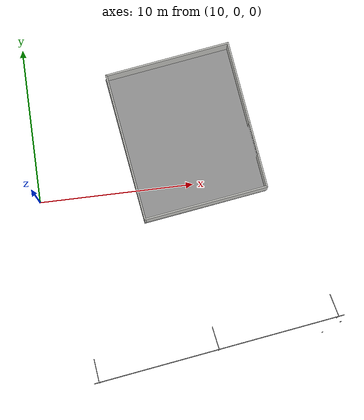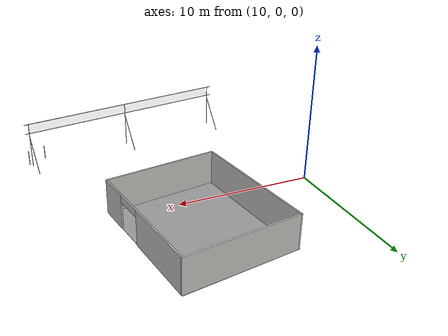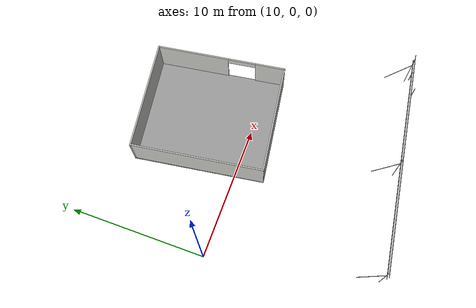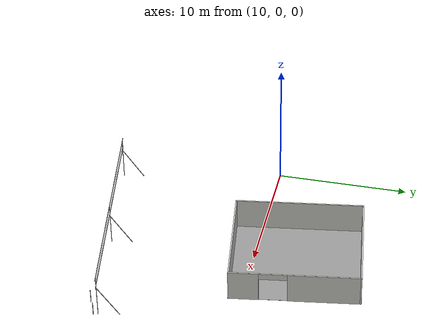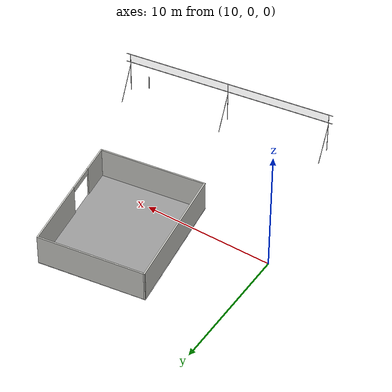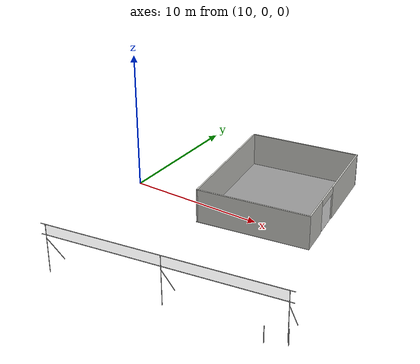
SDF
<sdf version="1.7">
 <world name="default">
  <model name="frontage">
   <link name="link_1">
    <pose>6.68 -7.94 1.7 0 -0 0</pose>
    <collision name="collision">
     <geometry><cylinder><length>3.5</length><radius>0.02</radius></cylinder></geometry>
    </collision>
    <visual name="visual">
     <geometry><cylinder><length>3.5</length><radius>0.02</radius></cylinder></geometry>
     <material>
      <script><uri>file://media/materials/scripts/gazebo.material</uri><name>Gazebo/Chrome</name></script>
      <emissive>0.1 0.1 0.1 1</emissive>
      <shader type="vertex"><normal_map>__default__</normal_map></shader>
      <specular>0.01 0.01 0.01 1</specular>
      <ambient>0.5 0.5 0.5 1</ambient>
      <diffuse>0.05 0.05 0.05 1</diffuse>
     </material>
    </visual>
   </link>
   <link name="link_2">
    <pose>6.68 0 1.7 0 -0 0</pose>
    <collision name="collision">
     <geometry><cylinder><length>3.5</length><radius>0.02</radius></cylinder></geometry>
    </collision>
    <visual name="visual">
     <geometry><cylinder><length>3.5</length><radius>0.02</radius></cylinder></geometry>
     <material>
      <script><uri>file://media/materials/scripts/gazebo.material</uri><name>Gazebo/Chrome</name></script>
      <emissive>0.1 0.1 0.1 1</emissive>
      <shader type="vertex"><normal_map>__default__</normal_map></shader>
      <specular>0.01 0.01 0.01 1</specular>
      <ambient>0.5 0.5 0.5 1</ambient>
      <diffuse>0.05 0.05 0.05 1</diffuse>
     </material>
    </visual>
   </link>
   <link name="link_3">
    <pose>6.68 7.93 1.7 0 -0 0</pose>
    <collision name="collision">
     <geometry><cylinder><length>3.5</length><radius>0.02</radius></cylinder></geometry>
    </collision>
    <visual name="visual">
     <geometry><cylinder><length>3.5</length><radius>0.02</radius></cylinder></geometry>
     <material>
      <script><uri>file://media/materials/scripts/gazebo.material</uri><name>Gazebo/Chrome</name></script>
      <emissive>0.1 0.1 0.1 1</emissive>
      <shader type="vertex"><normal_map>__default__</normal_map></shader>
      <specular>0.01 0.01 0.01 1</specular>
      <ambient>0.5 0.5 0.5 1</ambient>
      <diffuse>0.05 0.05 0.05 1</diffuse>
     </material>
    </visual>
   </link>
   <link name="link_4">
    <pose>6.68 0 2.7 1.5707 -0 0</pose>
    <collision name="collision">
     <geometry><cylinder><length>16.5</length><radius>0.02</radius></cylinder></geometry>
    </collision>
    <visual name="visual">
     <geometry><cylinder><length>16.5</length><radius>0.02</radius></cylinder></geometry>
     <material>
      <script><uri>file://media/materials/scripts/gazebo.material</uri><name>Gazebo/Chrome</name></script>
      <emissive>0.1 0.1 0.1 1</emissive>
      <shader type="vertex"><normal_map>__default__</normal_map></shader>
      <specular>0.01 0.01 0.01 1</specular>
      <ambient>0.5 0.5 0.5 1</ambient>
      <diffuse>0.05 0.05 0.05 1</diffuse>
     </material>
    </visual>
   </link>
   <link name="link_5">
    <pose>6.68 0 3.45 1.5707 -0 0</pose>
    <collision name="collision">
     <geometry><cylinder><length>16.5</length><radius>0.02</radius></cylinder></geometry>
    </collision>
    <visual name="visual">
     <geometry><cylinder><length>16.5</length><radius>0.02</radius></cylinder></geometry>
     <material>
      <script><uri>file://media/materials/scripts/gazebo.material</uri><name>Gazebo/Chrome</name></script>
      <emissive>0.1 0.1 0.1 1</emissive>
      <shader type="vertex"><normal_map>__default__</normal_map></shader>
      <specular>0.01 0.01 0.01 1</specular>
      <ambient>0.5 0.5 0.5 1</ambient>
      <diffuse>0.05 0.05 0.05 1</diffuse>
     </material>
    </visual>
   </link>
   <link name="link_6">
    <pose>5.89 -7.94 1.225 0 0.565 0</pose>
    <collision name="collision">
     <geometry><cylinder><length>2.93</length><radius>0.02</radius></cylinder></geometry>
    </collision>
    <visual name="visual">
     <geometry><cylinder><length>2.93</length><radius>0.02</radius></cylinder></geometry>
     <material>
      <script><uri>file://media/materials/scripts/gazebo.material</uri><name>Gazebo/Chrome</name></script>
      <emissive>0.1 0.1 0.1 1</emissive>
      <shader type="vertex"><normal_map>__default__</normal_map></shader>
      <specular>0.01 0.01 0.01 1</specular>
      <ambient>0.5 0.5 0.5 1</ambient>
      <diffuse>0.05 0.05 0.05 1</diffuse>
     </material>
    </visual>
   </link>
   <link name="link_7">
    <pose>5.89 0 1.225 0 0.565 0</pose>
    <collision name="collision">
     <geometry><cylinder><length>2.93</length><radius>0.02</radius></cylinder></geometry>
    </collision>
    <visual name="visual">
     <geometry><cylinder><length>2.93</length><radius>0.02</radius></cylinder></geometry>
     <material>
      <script><uri>file://media/materials/scripts/gazebo.material</uri><name>Gazebo/Chrome</name></script>
      <emissive>0.1 0.1 0.1 1</emissive>
      <shader type="vertex"><normal_map>__default__</normal_map></shader>
      <specular>0.01 0.01 0.01 1</specular>
      <ambient>0.5 0.5 0.5 1</ambient>
      <diffuse>0.05 0.05 0.05 1</diffuse>
     </material>
    </visual>
   </link>
   <link name="link_8">
    <pose>5.89 7.93 1.225 0 0.565 0</pose>
    <collision name="collision">
     <geometry><cylinder><length>2.93</length><radius>0.02</radius></cylinder></geometry>
    </collision>
    <visual name="visual">
     <geometry><cylinder><length>2.93</length><radius>0.02</radius></cylinder></geometry>
     <material>
      <script><uri>file://media/materials/scripts/gazebo.material</uri><name>Gazebo/Chrome</name></script>
      <emissive>0.1 0.1 0.1 1</emissive>
      <shader type="vertex"><normal_map>__default__</normal_map></shader>
      <specular>0.01 0.01 0.01 1</specular>
      <ambient>0.5 0.5 0.5 1</ambient>
      <diffuse>0.05 0.05 0.05 1</diffuse>
     </material>
    </visual>
   </link>
   <link name="link_9">
    <pose>6.68 0 3.075 0 -0 0</pose>
    <collision name="collision"><geometry><box><size>0.002 15.87 0.75</size></box></geometry></collision>
    <visual name="visual">
     <geometry><box><size>0.002 15.87 0.75</size></box></geometry>
     <material>
      <emissive>1 1 1 1</emissive>
      <shader type="vertex"><normal_map>__default__</normal_map></shader>
      <specular>1 1 1 1</specular>
      <lighting>1</lighting>
      <ambient>1 1 1 1</ambient>
      <diffuse>1 1 1 1</diffuse>
     </material>
     <transparency>0.65</transparency>
    </visual>
   </link>
   <static>1</static>
   <pose>19.378 -4.29745 -0 0 0 -1.42072</pose>
  </model>
  <model name="food_handling_unit">
   <link name="Wall_5">
    <pose>-0 4.05 0 0 -0 0</pose>
    <collision name="Wall_5_Collision">
     <geometry><box><size>9.70037 0.1 2.5</size></box></geometry>
     <pose>0 0 1.25 0 -0 0</pose>
    </collision>
    <visual name="Wall_5_Visual">
     <geometry><box><size>9.70037 0.1 2.5</size></box></geometry>
     <material>
      <ambient>1 1 1 1</ambient>
      <script><uri>file://media/materials/scripts/gazebo.material</uri><name>Gazebo/CeilingTiled</name></script>
     </material>
     <pose>0 0 1.25 0 -0 0</pose>
     <meta><layer>0</layer></meta>
    </visual>
   </link>
   <link name="Wall_6">
    <pose>4.8 -0 0 0 -0 -1.5708</pose>
    <collision name="Wall_6_Collision">
     <geometry><box><size>8.20047 0.1 2.5</size></box></geometry>
     <pose>0 0 1.25 0 -0 0</pose>
    </collision>
    <visual name="Wall_6_Visual">
     <geometry><box><size>8.20047 0.1 2.5</size></box></geometry>
     <material>
      <ambient>1 1 1 1</ambient>
      <script><uri>file://media/materials/scripts/gazebo.material</uri><name>Gazebo/CeilingTiled</name></script>
     </material>
     <pose>0 0 1.25 0 -0 0</pose>
     <meta><layer>0</layer></meta>
    </visual>
   </link>
   <link name="Wall_7">
    <pose>-0 -4.05 0 0 -0 3.14159</pose>
    <collision name="Wall_7_Collision_0">
     <geometry><box><size>5.3757 0.1 2.5</size></box></geometry>
     <pose>-2.16197 0 1.25 0 -0 0</pose>
    </collision>
    <collision name="Wall_7_Collision_1">
     <geometry><box><size>2.23943 0.1 2.5</size></box></geometry>
     <pose>3.7301 0 1.25 0 -0 0</pose>
    </collision>
    <collision name="Wall_7_Collision_2">
     <geometry><box><size>2.0845 0.1 0.5</size></box></geometry>
     <pose>1.56813 0 2.25 0 -0 0</pose>
    </collision>
    <visual name="Wall_7_Visual_0">
     <geometry><box><size>5.3757 0.1 2.5</size></box></geometry>
     <material>
      <ambient>1 1 1 1</ambient>
      <script><uri>file://media/materials/scripts/gazebo.material</uri><name>Gazebo/CeilingTiled</name></script>
     </material>
     <pose>-2.16197 0 1.25 0 -0 0</pose>
     <meta><layer>0</layer></meta>
    </visual>
    <visual name="Wall_7_Visual_1">
     <geometry><box><size>2.23943 0.1 2.5</size></box></geometry>
     <material>
      <ambient>1 1 1 1</ambient>
      <script><uri>file://media/materials/scripts/gazebo.material</uri><name>Gazebo/CeilingTiled</name></script>
     </material>
     <pose>3.7301 0 1.25 0 -0 0</pose>
     <meta><layer>0</layer></meta>
    </visual>
    <visual name="Wall_7_Visual_2">
     <geometry><box><size>2.0845 0.1 0.5</size></box></geometry>
     <material>
      <ambient>1 1 1 1</ambient>
      <script><uri>file://media/materials/scripts/gazebo.material</uri><name>Gazebo/CeilingTiled</name></script>
     </material>
     <pose>1.56813 0 2.25 0 -0 0</pose>
     <meta><layer>0</layer></meta>
    </visual>
   </link>
   <link name="Wall_8">
    <pose>-4.8 -0 0 0 -0 1.5708</pose>
    <collision name="Wall_8_Collision">
     <geometry><box><size>8.19953 0.1 2.5</size></box></geometry>
     <pose>0 0 1.25 0 -0 0</pose>
    </collision>
    <visual name="Wall_8_Visual">
     <geometry><box><size>8.19953 0.1 2.5</size></box></geometry>
     <material>
      <ambient>1 1 1 1</ambient>
      <script><uri>file://media/materials/scripts/gazebo.material</uri><name>Gazebo/CeilingTiled</name></script>
     </material>
     <pose>0 0 1.25 0 -0 0</pose>
     <meta><layer>0</layer></meta>
    </visual>
   </link>
   <static>1</static>
   <pose>19.9734 3.27172 0 0 -0 1.71553</pose>
  </model>
  <model name="fhu_floor">
   <link name="link_0">
    <collision name="collision"><geometry><box><size>9.75 8.2 0.001</size></box></geometry></collision>
    <visual name="visual">
     <geometry><box><size>9.75 8.2 0.01</size></box></geometry>
     <material>
      <script><uri>file://media/materials/scripts/gazebo.material</uri><name>Gazebo/Grey</name></script>
      <shader type="vertex"><normal_map>__default__</normal_map></shader>
      <emissive>0 0 0 1</emissive>
      <specular>0.01 0.01 0.01 1</specular>
      <lighting>1</lighting>
      <ambient>0.3 0.3 0.3 1</ambient>
      <diffuse>0.7 0.7 0.7 1</diffuse>
     </material>
    </visual>
   </link>
   <static>1</static>
   <pose>19.932 3.26262 0 0 -0 1.71778</pose>
  </model>
  <model name="pole_63">
   <link name="link">
    <collision name="collision">
     <geometry><cylinder><length>1.15</length><radius>0.025</radius></cylinder></geometry>
    </collision>
    <visual name="visual">
     <geometry><cylinder><length>1.15</length><radius>0.025</radius></cylinder></geometry>
     <material>
      <script><uri>file://media/materials/scripts/gazebo.material</uri><name>Gazebo/Chrome</name></script>
      <emissive>0.1 0.1 0.1 1</emissive>
      <shader type="vertex"><normal_map>__default__</normal_map></shader>
      <specular>0.01 0.01 0.01 1</specular>
      <ambient>0.5 0.5 0.5 1</ambient>
      <diffuse>0.05 0.05 0.05 1</diffuse>
     </material>
    </visual>
   </link>
   <static>1</static>
   <pose>28.42 -10.01 0.575 0 -0 0</pose>
  </model>
  <model name="pole_72">
   <link name="link">
    <collision name="collision">
     <geometry><cylinder><length>1.15</length><radius>0.025</radius></cylinder></geometry>
    </collision>
    <visual name="visual">
     <geometry><cylinder><length>1.15</length><radius>0.025</radius></cylinder></geometry>
     <material>
      <script><uri>file://media/materials/scripts/gazebo.material</uri><name>Gazebo/Chrome</name></script>
      <emissive>0.1 0.1 0.1 1</emissive>
      <shader type="vertex"><normal_map>__default__</normal_map></shader>
      <specular>0.01 0.01 0.01 1</specular>
      <ambient>0.5 0.5 0.5 1</ambient>
      <diffuse>0.05 0.05 0.05 1</diffuse>
     </material>
    </visual>
   </link>
   <static>1</static>
   <pose>27.15 -10.55 0.575 0 -0 0</pose>
  </model>
 </world>
</sdf>
